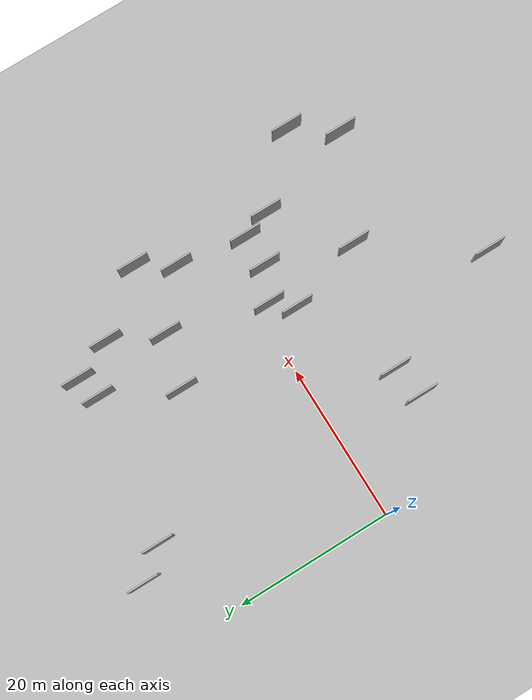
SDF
<?xml version="1.0" encoding="utf-8"?>

<sdf version="1.6">

   <world name="default">

      <gui fullscreen="0">

         <camera name="user_camera">

            <pose>-15 0 4.57585 0 0 0</pose>

            <view_controller>orbit</view_controller>

         </camera>

      </gui>

      <scene>

         <sky>

           <clouds>

             <speed>12</speed>

           </clouds>

         </sky>

         <ambient>0.4 0.4 0.4 1</ambient>

         <background>0.7 0.7 0.7 1</background>

         <shadows>1</shadows>

      </scene>

      <gravity>0 0 -9.8066</gravity>

      <magnetic_field>6e-06 2.3e-05 -4.2e-05</magnetic_field>

      <physics default="0" name="default_physics" type="ode">

         <ode>

            <solver>

               <type>quick</type>

               <iters>10</iters>

               <sor>1.0</sor>

               <use_dynamic_moi_rescaling>0</use_dynamic_moi_rescaling>

            </solver>

            <constraints>

               <cfm>0</cfm>

               <erp>0.2</erp>

               <contact_max_correcting_vel>100</contact_max_correcting_vel>

               <contact_surface_layer>0.001</contact_surface_layer>

            </constraints>

         </ode>

         <max_step_size>0.004</max_step_size>

         <real_time_factor>1</real_time_factor>

         <real_time_update_rate>250</real_time_update_rate>

      </physics>

      <light name="sun" type="directional">

         <cast_shadows>1</cast_shadows>

         <pose>0 0 10 0 0 0</pose>

         <diffuse>0.8 0.8 0.8 1</diffuse>

         <specular>0.2 0.2 0.2 1</specular>

         <attenuation>

            <range>1000</range>

            <constant>0.9</constant>

            <linear>0.01</linear>

            <quadratic>0.001</quadratic>

         </attenuation>

         <direction>-0.5 0.1 -0.9</direction>

      </light>

      <include>

         <name>ground_plane_1</name>

         <uri>model://HANNAS_ground_plane</uri>

         <pose>0 0 0  0 0 0</pose>

      </include>

      <include>

         <name>ground_plane_2</name>

         <uri>model://HANNAS_ground_plane</uri>

         <pose>100 0 0  0 0 0</pose>

      </include>

      <model name="HANNAS_wall_1">

         <static>1</static>

         <pose frame="">32.1190 22.2360 2.5 0.000000 0.000000 1.570796</pose>

         <link name="link">

            <pose frame="">0 0 2.00 0 0 0</pose>

            <collision name="collision">

               <geometry>

                  <box>

                     <size>4.00 0.2 4.00</size>

                  </box>

               </geometry>

               <max_contacts>10</max_contacts>

               <surface>

                  <contact>

                     <ode/>

                  </contact>

                  <bounce/>

                  <friction>

                     <torsional>

                        <ode/>

                     </torsional>

                     <ode/>

                  </friction>

               </surface>

            </collision>

            <visual name="visual">

               <cast_shadows>0</cast_shadows>

               <geometry>

                  <box>

                     <size>4.00 0.2 4.00</size>

                  </box>

               </geometry>

               <material>

                  <script>

                     <uri>model://HANNAS_wall/materials/scripts</uri>

                     <uri>model://HANNAS_wall/materials/textures</uri>

                     <name>vrc/HANNAS_wall</name>

                  </script>

               </material>

            </visual>

            <self_collide>0</self_collide>

            <enable_wind>0</enable_wind>

            <kinematic>0</kinematic>

         </link>

      </model>

      <model name="HANNAS_wall_2">

         <static>1</static>

         <pose frame="">28.8971 -13.4470 2.5 0.000000 0.000000 1.570796</pose>

         <link name="link">

            <pose frame="">0 0 2.00 0 0 0</pose>

            <collision name="collision">

               <geometry>

                  <box>

                     <size>4.00 0.2 4.00</size>

                  </box>

               </geometry>

               <max_contacts>10</max_contacts>

               <surface>

                  <contact>

                     <ode/>

                  </contact>

                  <bounce/>

                  <friction>

                     <torsional>

                        <ode/>

                     </torsional>

                     <ode/>

                  </friction>

               </surface>

            </collision>

            <visual name="visual">

               <cast_shadows>0</cast_shadows>

               <geometry>

                  <box>

                     <size>4.00 0.2 4.00</size>

                  </box>

               </geometry>

               <material>

                  <script>

                     <uri>model://HANNAS_wall/materials/scripts</uri>

                     <uri>model://HANNAS_wall/materials/textures</uri>

                     <name>vrc/HANNAS_wall</name>

                  </script>

               </material>

            </visual>

            <self_collide>0</self_collide>

            <enable_wind>0</enable_wind>

            <kinematic>0</kinematic>

         </link>

      </model>

      <model name="HANNAS_wall_3">

         <static>1</static>

         <pose frame="">28.0443 -1.2903 2.5 0.000000 0.000000 1.570796</pose>

         <link name="link">

            <pose frame="">0 0 2.00 0 0 0</pose>

            <collision name="collision">

               <geometry>

                  <box>

                     <size>4.00 0.2 4.00</size>

                  </box>

               </geometry>

               <max_contacts>10</max_contacts>

               <surface>

                  <contact>

                     <ode/>

                  </contact>

                  <bounce/>

                  <friction>

                     <torsional>

                        <ode/>

                     </torsional>

                     <ode/>

                  </friction>

               </surface>

            </collision>

            <visual name="visual">

               <cast_shadows>0</cast_shadows>

               <geometry>

                  <box>

                     <size>4.00 0.2 4.00</size>

                  </box>

               </geometry>

               <material>

                  <script>

                     <uri>model://HANNAS_wall/materials/scripts</uri>

                     <uri>model://HANNAS_wall/materials/textures</uri>

                     <name>vrc/HANNAS_wall</name>

                  </script>

               </material>

            </visual>

            <self_collide>0</self_collide>

            <enable_wind>0</enable_wind>

            <kinematic>0</kinematic>

         </link>

      </model>

      <model name="HANNAS_wall_4">

         <static>1</static>

         <pose frame="">40.3377 9.8438 2.5 0.000000 0.000000 1.570796</pose>

         <link name="link">

            <pose frame="">0 0 2.00 0 0 0</pose>

            <collision name="collision">

               <geometry>

                  <box>

                     <size>4.00 0.2 4.00</size>

                  </box>

               </geometry>

               <max_contacts>10</max_contacts>

               <surface>

                  <contact>

                     <ode/>

                  </contact>

                  <bounce/>

                  <friction>

                     <torsional>

                        <ode/>

                     </torsional>

                     <ode/>

                  </friction>

               </surface>

            </collision>

            <visual name="visual">

               <cast_shadows>0</cast_shadows>

               <geometry>

                  <box>

                     <size>4.00 0.2 4.00</size>

                  </box>

               </geometry>

               <material>

                  <script>

                     <uri>model://HANNAS_wall/materials/scripts</uri>

                     <uri>model://HANNAS_wall/materials/textures</uri>

                     <name>vrc/HANNAS_wall</name>

                  </script>

               </material>

            </visual>

            <self_collide>0</self_collide>

            <enable_wind>0</enable_wind>

            <kinematic>0</kinematic>

         </link>

      </model>

      <model name="HANNAS_wall_5">

         <static>1</static>

         <pose frame="">29.1196 21.2930 2.5 0.000000 0.000000 1.570796</pose>

         <link name="link">

            <pose frame="">0 0 2.00 0 0 0</pose>

            <collision name="collision">

               <geometry>

                  <box>

                     <size>4.00 0.2 4.00</size>

                  </box>

               </geometry>

               <max_contacts>10</max_contacts>

               <surface>

                  <contact>

                     <ode/>

                  </contact>

                  <bounce/>

                  <friction>

                     <torsional>

                        <ode/>

                     </torsional>

                     <ode/>

                  </friction>

               </surface>

            </collision>

            <visual name="visual">

               <cast_shadows>0</cast_shadows>

               <geometry>

                  <box>

                     <size>4.00 0.2 4.00</size>

                  </box>

               </geometry>

               <material>

                  <script>

                     <uri>model://HANNAS_wall/materials/scripts</uri>

                     <uri>model://HANNAS_wall/materials/textures</uri>

                     <name>vrc/HANNAS_wall</name>

                  </script>

               </material>

            </visual>

            <self_collide>0</self_collide>

            <enable_wind>0</enable_wind>

            <kinematic>0</kinematic>

         </link>

      </model>

      <model name="HANNAS_wall_6">

         <static>1</static>

         <pose frame="">37.6463 5.5457 2.5 0.000000 0.000000 1.570796</pose>

         <link name="link">

            <pose frame="">0 0 2.00 0 0 0</pose>

            <collision name="collision">

               <geometry>

                  <box>

                     <size>4.00 0.2 4.00</size>

                  </box>

               </geometry>

               <max_contacts>10</max_contacts>

               <surface>

                  <contact>

                     <ode/>

                  </contact>

                  <bounce/>

                  <friction>

                     <torsional>

                        <ode/>

                     </torsional>

                     <ode/>

                  </friction>

               </surface>

            </collision>

            <visual name="visual">

               <cast_shadows>0</cast_shadows>

               <geometry>

                  <box>

                     <size>4.00 0.2 4.00</size>

                  </box>

               </geometry>

               <material>

                  <script>

                     <uri>model://HANNAS_wall/materials/scripts</uri>

                     <uri>model://HANNAS_wall/materials/textures</uri>

                     <name>vrc/HANNAS_wall</name>

                  </script>

               </material>

            </visual>

            <self_collide>0</self_collide>

            <enable_wind>0</enable_wind>

            <kinematic>0</kinematic>

         </link>

      </model>

      <model name="HANNAS_wall_7">

         <static>1</static>

         <pose frame="">10.9579 24.1774 2.5 0.000000 0.000000 1.570796</pose>

         <link name="link">

            <pose frame="">0 0 2.00 0 0 0</pose>

            <collision name="collision">

               <geometry>

                  <box>

                     <size>4.00 0.2 4.00</size>

                  </box>

               </geometry>

               <max_contacts>10</max_contacts>

               <surface>

                  <contact>

                     <ode/>

                  </contact>

                  <bounce/>

                  <friction>

                     <torsional>

                        <ode/>

                     </torsional>

                     <ode/>

                  </friction>

               </surface>

            </collision>

            <visual name="visual">

               <cast_shadows>0</cast_shadows>

               <geometry>

                  <box>

                     <size>4.00 0.2 4.00</size>

                  </box>

               </geometry>

               <material>

                  <script>

                     <uri>model://HANNAS_wall/materials/scripts</uri>

                     <uri>model://HANNAS_wall/materials/textures</uri>

                     <name>vrc/HANNAS_wall</name>

                  </script>

               </material>

            </visual>

            <self_collide>0</self_collide>

            <enable_wind>0</enable_wind>

            <kinematic>0</kinematic>

         </link>

      </model>

      <model name="HANNAS_wall_8">

         <static>1</static>

         <pose frame="">31.3705 10.8681 2.5 0.000000 0.000000 1.570796</pose>

         <link name="link">

            <pose frame="">0 0 2.00 0 0 0</pose>

            <collision name="collision">

               <geometry>

                  <box>

                     <size>4.00 0.2 4.00</size>

                  </box>

               </geometry>

               <max_contacts>10</max_contacts>

               <surface>

                  <contact>

                     <ode/>

                  </contact>

                  <bounce/>

                  <friction>

                     <torsional>

                        <ode/>

                     </torsional>

                     <ode/>

                  </friction>

               </surface>

            </collision>

            <visual name="visual">

               <cast_shadows>0</cast_shadows>

               <geometry>

                  <box>

                     <size>4.00 0.2 4.00</size>

                  </box>

               </geometry>

               <material>

                  <script>

                     <uri>model://HANNAS_wall/materials/scripts</uri>

                     <uri>model://HANNAS_wall/materials/textures</uri>

                     <name>vrc/HANNAS_wall</name>

                  </script>

               </material>

            </visual>

            <self_collide>0</self_collide>

            <enable_wind>0</enable_wind>

            <kinematic>0</kinematic>

         </link>

      </model>

      <model name="HANNAS_wall_9">

         <static>1</static>

         <pose frame="">37.5793 -6.7383 2.5 0.000000 0.000000 1.570796</pose>

         <link name="link">

            <pose frame="">0 0 2.00 0 0 0</pose>

            <collision name="collision">

               <geometry>

                  <box>

                     <size>4.00 0.2 4.00</size>

                  </box>

               </geometry>

               <max_contacts>10</max_contacts>

               <surface>

                  <contact>

                     <ode/>

                  </contact>

                  <bounce/>

                  <friction>

                     <torsional>

                        <ode/>

                     </torsional>

                     <ode/>

                  </friction>

               </surface>

            </collision>

            <visual name="visual">

               <cast_shadows>0</cast_shadows>

               <geometry>

                  <box>

                     <size>4.00 0.2 4.00</size>

                  </box>

               </geometry>

               <material>

                  <script>

                     <uri>model://HANNAS_wall/materials/scripts</uri>

                     <uri>model://HANNAS_wall/materials/textures</uri>

                     <name>vrc/HANNAS_wall</name>

                  </script>

               </material>

            </visual>

            <self_collide>0</self_collide>

            <enable_wind>0</enable_wind>

            <kinematic>0</kinematic>

         </link>

      </model>

      <model name="HANNAS_wall_10">

         <static>1</static>

         <pose frame="">13.7438 -9.6040 2.5 0.000000 0.000000 1.570796</pose>

         <link name="link">

            <pose frame="">0 0 2.00 0 0 0</pose>

            <collision name="collision">

               <geometry>

                  <box>

                     <size>4.00 0.2 4.00</size>

                  </box>

               </geometry>

               <max_contacts>10</max_contacts>

               <surface>

                  <contact>

                     <ode/>

                  </contact>

                  <bounce/>

                  <friction>

                     <torsional>

                        <ode/>

                     </torsional>

                     <ode/>

                  </friction>

               </surface>

            </collision>

            <visual name="visual">

               <cast_shadows>0</cast_shadows>

               <geometry>

                  <box>

                     <size>4.00 0.2 4.00</size>

                  </box>

               </geometry>

               <material>

                  <script>

                     <uri>model://HANNAS_wall/materials/scripts</uri>

                     <uri>model://HANNAS_wall/materials/textures</uri>

                     <name>vrc/HANNAS_wall</name>

                  </script>

               </material>

            </visual>

            <self_collide>0</self_collide>

            <enable_wind>0</enable_wind>

            <kinematic>0</kinematic>

         </link>

      </model>

      <model name="HANNAS_wall_11">

         <static>1</static>

         <pose frame="">45.0636 -14.2656 2.5 0.000000 0.000000 1.570796</pose>

         <link name="link">

            <pose frame="">0 0 2.00 0 0 0</pose>

            <collision name="collision">

               <geometry>

                  <box>

                     <size>4.00 0.2 4.00</size>

                  </box>

               </geometry>

               <max_contacts>10</max_contacts>

               <surface>

                  <contact>

                     <ode/>

                  </contact>

                  <bounce/>

                  <friction>

                     <torsional>

                        <ode/>

                     </torsional>

                     <ode/>

                  </friction>

               </surface>

            </collision>

            <visual name="visual">

               <cast_shadows>0</cast_shadows>

               <geometry>

                  <box>

                     <size>4.00 0.2 4.00</size>

                  </box>

               </geometry>

               <material>

                  <script>

                     <uri>model://HANNAS_wall/materials/scripts</uri>

                     <uri>model://HANNAS_wall/materials/textures</uri>

                     <name>vrc/HANNAS_wall</name>

                  </script>

               </material>

            </visual>

            <self_collide>0</self_collide>

            <enable_wind>0</enable_wind>

            <kinematic>0</kinematic>

         </link>

      </model>

      <model name="HANNAS_wall_12">

         <static>1</static>

         <pose frame="">19.8874 -26.5173 2.5 0.000000 0.000000 1.570796</pose>

         <link name="link">

            <pose frame="">0 0 2.00 0 0 0</pose>

            <collision name="collision">

               <geometry>

                  <box>

                     <size>4.00 0.2 4.00</size>

                  </box>

               </geometry>

               <max_contacts>10</max_contacts>

               <surface>

                  <contact>

                     <ode/>

                  </contact>

                  <bounce/>

                  <friction>

                     <torsional>

                        <ode/>

                     </torsional>

                     <ode/>

                  </friction>

               </surface>

            </collision>

            <visual name="visual">

               <cast_shadows>0</cast_shadows>

               <geometry>

                  <box>

                     <size>4.00 0.2 4.00</size>

                  </box>

               </geometry>

               <material>

                  <script>

                     <uri>model://HANNAS_wall/materials/scripts</uri>

                     <uri>model://HANNAS_wall/materials/textures</uri>

                     <name>vrc/HANNAS_wall</name>

                  </script>

               </material>

            </visual>

            <self_collide>0</self_collide>

            <enable_wind>0</enable_wind>

            <kinematic>0</kinematic>

         </link>

      </model>

      <model name="HANNAS_wall_13">

         <static>1</static>

         <pose frame="">36.3445 -3.1122 2.5 0.000000 0.000000 1.570796</pose>

         <link name="link">

            <pose frame="">0 0 2.00 0 0 0</pose>

            <collision name="collision">

               <geometry>

                  <box>

                     <size>4.00 0.2 4.00</size>

                  </box>

               </geometry>

               <max_contacts>10</max_contacts>

               <surface>

                  <contact>

                     <ode/>

                  </contact>

                  <bounce/>

                  <friction>

                     <torsional>

                        <ode/>

                     </torsional>

                     <ode/>

                  </friction>

               </surface>

            </collision>

            <visual name="visual">

               <cast_shadows>0</cast_shadows>

               <geometry>

                  <box>

                     <size>4.00 0.2 4.00</size>

                  </box>

               </geometry>

               <material>

                  <script>

                     <uri>model://HANNAS_wall/materials/scripts</uri>

                     <uri>model://HANNAS_wall/materials/textures</uri>

                     <name>vrc/HANNAS_wall</name>

                  </script>

               </material>

            </visual>

            <self_collide>0</self_collide>

            <enable_wind>0</enable_wind>

            <kinematic>0</kinematic>

         </link>

      </model>

      <model name="HANNAS_wall_14">

         <static>1</static>

         <pose frame="">8.0269 27.8364 2.5 0.000000 0.000000 1.570796</pose>

         <link name="link">

            <pose frame="">0 0 2.00 0 0 0</pose>

            <collision name="collision">

               <geometry>

                  <box>

                     <size>4.00 0.2 4.00</size>

                  </box>

               </geometry>

               <max_contacts>10</max_contacts>

               <surface>

                  <contact>

                     <ode/>

                  </contact>

                  <bounce/>

                  <friction>

                     <torsional>

                        <ode/>

                     </torsional>

                     <ode/>

                  </friction>

               </surface>

            </collision>

            <visual name="visual">

               <cast_shadows>0</cast_shadows>

               <geometry>

                  <box>

                     <size>4.00 0.2 4.00</size>

                  </box>

               </geometry>

               <material>

                  <script>

                     <uri>model://HANNAS_wall/materials/scripts</uri>

                     <uri>model://HANNAS_wall/materials/textures</uri>

                     <name>vrc/HANNAS_wall</name>

                  </script>

               </material>

            </visual>

            <self_collide>0</self_collide>

            <enable_wind>0</enable_wind>

            <kinematic>0</kinematic>

         </link>

      </model>

      <model name="HANNAS_wall_15">

         <static>1</static>

         <pose frame="">32.1967 -3.2416 2.5 0.000000 0.000000 1.570796</pose>

         <link name="link">

            <pose frame="">0 0 2.00 0 0 0</pose>

            <collision name="collision">

               <geometry>

                  <box>

                     <size>4.00 0.2 4.00</size>

                  </box>

               </geometry>

               <max_contacts>10</max_contacts>

               <surface>

                  <contact>

                     <ode/>

                  </contact>

                  <bounce/>

                  <friction>

                     <torsional>

                        <ode/>

                     </torsional>

                     <ode/>

                  </friction>

               </surface>

            </collision>

            <visual name="visual">

               <cast_shadows>0</cast_shadows>

               <geometry>

                  <box>

                     <size>4.00 0.2 4.00</size>

                  </box>

               </geometry>

               <material>

                  <script>

                     <uri>model://HANNAS_wall/materials/scripts</uri>

                     <uri>model://HANNAS_wall/materials/textures</uri>

                     <name>vrc/HANNAS_wall</name>

                  </script>

               </material>

            </visual>

            <self_collide>0</self_collide>

            <enable_wind>0</enable_wind>

            <kinematic>0</kinematic>

         </link>

      </model>

      <model name="HANNAS_wall_16">

         <static>1</static>

         <pose frame="">9.5676 -10.5660 2.5 0.000000 0.000000 1.570796</pose>

         <link name="link">

            <pose frame="">0 0 2.00 0 0 0</pose>

            <collision name="collision">

               <geometry>

                  <box>

                     <size>4.00 0.2 4.00</size>

                  </box>

               </geometry>

               <max_contacts>10</max_contacts>

               <surface>

                  <contact>

                     <ode/>

                  </contact>

                  <bounce/>

                  <friction>

                     <torsional>

                        <ode/>

                     </torsional>

                     <ode/>

                  </friction>

               </surface>

            </collision>

            <visual name="visual">

               <cast_shadows>0</cast_shadows>

               <geometry>

                  <box>

                     <size>4.00 0.2 4.00</size>

                  </box>

               </geometry>

               <material>

                  <script>

                     <uri>model://HANNAS_wall/materials/scripts</uri>

                     <uri>model://HANNAS_wall/materials/textures</uri>

                     <name>vrc/HANNAS_wall</name>

                  </script>

               </material>

            </visual>

            <self_collide>0</self_collide>

            <enable_wind>0</enable_wind>

            <kinematic>0</kinematic>

         </link>

      </model>

      <model name="HANNAS_wall_17">

         <static>1</static>

         <pose frame="">25.9573 -3.8339 2.5 0.000000 0.000000 1.570796</pose>

         <link name="link">

            <pose frame="">0 0 2.00 0 0 0</pose>

            <collision name="collision">

               <geometry>

                  <box>

                     <size>4.00 0.2 4.00</size>

                  </box>

               </geometry>

               <max_contacts>10</max_contacts>

               <surface>

                  <contact>

                     <ode/>

                  </contact>

                  <bounce/>

                  <friction>

                     <torsional>

                        <ode/>

                     </torsional>

                     <ode/>

                  </friction>

               </surface>

            </collision>

            <visual name="visual">

               <cast_shadows>0</cast_shadows>

               <geometry>

                  <box>

                     <size>4.00 0.2 4.00</size>

                  </box>

               </geometry>

               <material>

                  <script>

                     <uri>model://HANNAS_wall/materials/scripts</uri>

                     <uri>model://HANNAS_wall/materials/textures</uri>

                     <name>vrc/HANNAS_wall</name>

                  </script>

               </material>

            </visual>

            <self_collide>0</self_collide>

            <enable_wind>0</enable_wind>

            <kinematic>0</kinematic>

         </link>

      </model>

      <model name="HANNAS_wall_18">

         <static>1</static>

         <pose frame="">41.3296 -19.4656 2.5 0.000000 0.000000 1.570796</pose>

         <link name="link">

            <pose frame="">0 0 2.00 0 0 0</pose>

            <collision name="collision">

               <geometry>

                  <box>

                     <size>4.00 0.2 4.00</size>

                  </box>

               </geometry>

               <max_contacts>10</max_contacts>

               <surface>

                  <contact>

                     <ode/>

                  </contact>

                  <bounce/>

                  <friction>

                     <torsional>

                        <ode/>

                     </torsional>

                     <ode/>

                  </friction>

               </surface>

            </collision>

            <visual name="visual">

               <cast_shadows>0</cast_shadows>

               <geometry>

                  <box>

                     <size>4.00 0.2 4.00</size>

                  </box>

               </geometry>

               <material>

                  <script>

                     <uri>model://HANNAS_wall/materials/scripts</uri>

                     <uri>model://HANNAS_wall/materials/textures</uri>

                     <name>vrc/HANNAS_wall</name>

                  </script>

               </material>

            </visual>

            <self_collide>0</self_collide>

            <enable_wind>0</enable_wind>

            <kinematic>0</kinematic>

         </link>

      </model>

      <model name="HANNAS_wall_19">

         <static>1</static>

         <pose frame="">24.8451 12.6179 2.5 0.000000 0.000000 1.570796</pose>

         <link name="link">

            <pose frame="">0 0 2.00 0 0 0</pose>

            <collision name="collision">

               <geometry>

                  <box>

                     <size>4.00 0.2 4.00</size>

                  </box>

               </geometry>

               <max_contacts>10</max_contacts>

               <surface>

                  <contact>

                     <ode/>

                  </contact>

                  <bounce/>

                  <friction>

                     <torsional>

                        <ode/>

                     </torsional>

                     <ode/>

                  </friction>

               </surface>

            </collision>

            <visual name="visual">

               <cast_shadows>0</cast_shadows>

               <geometry>

                  <box>

                     <size>4.00 0.2 4.00</size>

                  </box>

               </geometry>

               <material>

                  <script>

                     <uri>model://HANNAS_wall/materials/scripts</uri>

                     <uri>model://HANNAS_wall/materials/textures</uri>

                     <name>vrc/HANNAS_wall</name>

                  </script>

               </material>

            </visual>

            <self_collide>0</self_collide>

            <enable_wind>0</enable_wind>

            <kinematic>0</kinematic>

         </link>

      </model>

      <model name="HANNAS_wall_20">

         <static>1</static>

         <pose frame="">34.2785 17.1792 2.5 0.000000 0.000000 1.570796</pose>

         <link name="link">

            <pose frame="">0 0 2.00 0 0 0</pose>

            <collision name="collision">

               <geometry>

                  <box>

                     <size>4.00 0.2 4.00</size>

                  </box>

               </geometry>

               <max_contacts>10</max_contacts>

               <surface>

                  <contact>

                     <ode/>

                  </contact>

                  <bounce/>

                  <friction>

                     <torsional>

                        <ode/>

                     </torsional>

                     <ode/>

                  </friction>

               </surface>

            </collision>

            <visual name="visual">

               <cast_shadows>0</cast_shadows>

               <geometry>

                  <box>

                     <size>4.00 0.2 4.00</size>

                  </box>

               </geometry>

               <material>

                  <script>

                     <uri>model://HANNAS_wall/materials/scripts</uri>

                     <uri>model://HANNAS_wall/materials/textures</uri>

                     <name>vrc/HANNAS_wall</name>

                  </script>

               </material>

            </visual>

            <self_collide>0</self_collide>

            <enable_wind>0</enable_wind>

            <kinematic>0</kinematic>

         </link>

      </model>

   </world>

</sdf>

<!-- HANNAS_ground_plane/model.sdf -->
<sdf version="1.4">
<model name="HANNAS_ground_plane">
  <static>true</static>
    <link name="link">
      <collision name="collision">
        <geometry>
          <plane>
            <normal>0 0 1</normal>
            <size>1000 1000</size>
          </plane>
        </geometry>
        <surface>
          <friction>
            <ode>
              <mu>100</mu>
              <mu2>50</mu2>
            </ode>
          </friction>
        </surface>
      </collision>
      <visual name="visual">
        <cast_shadows>false</cast_shadows>
        <geometry>
          <plane>
            <normal>0 0 1</normal>
            <size>1000 1000</size>
          </plane>
        </geometry>
        <material>
          <script>
            <uri>model://HANNAS_ground_plane/materials/scripts/HANNAS_ground_plane.material</uri>
	    <uri>model://HANNAS_ground_plane/materials/textures</uri>
            <name>HANNASGroundPlane/Image</name>
          </script>
        </material>
      </visual>
    </link>
  </model>
</sdf>
